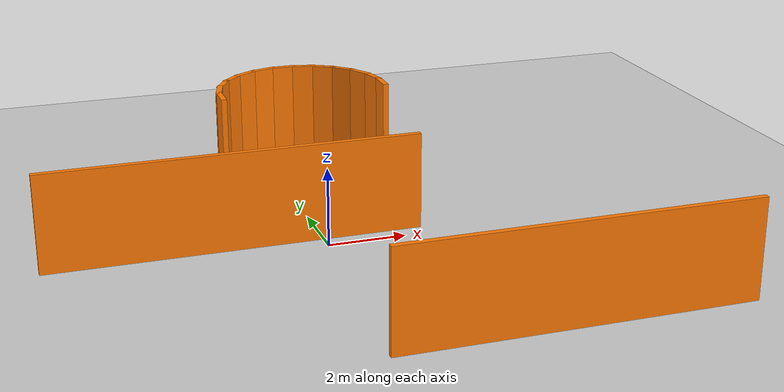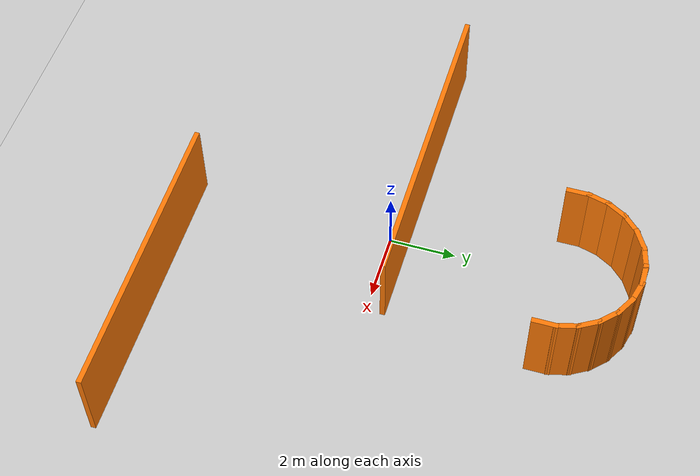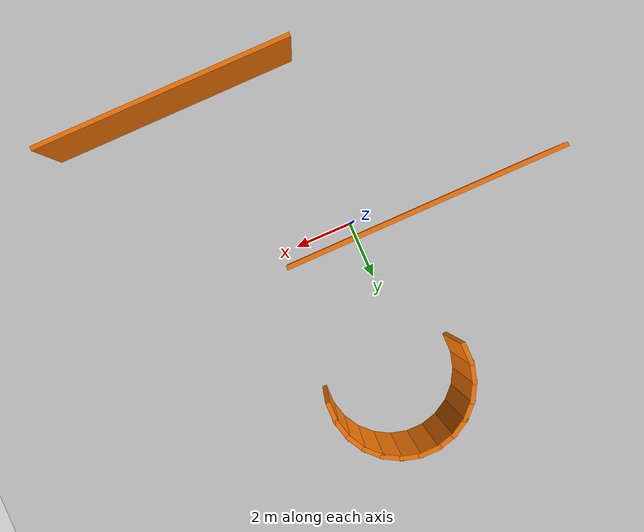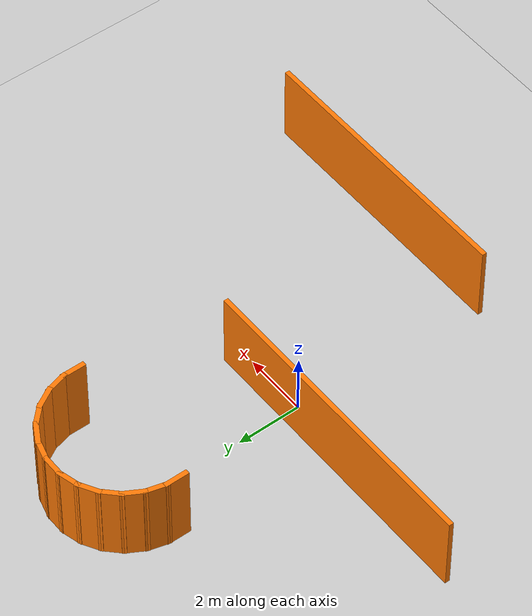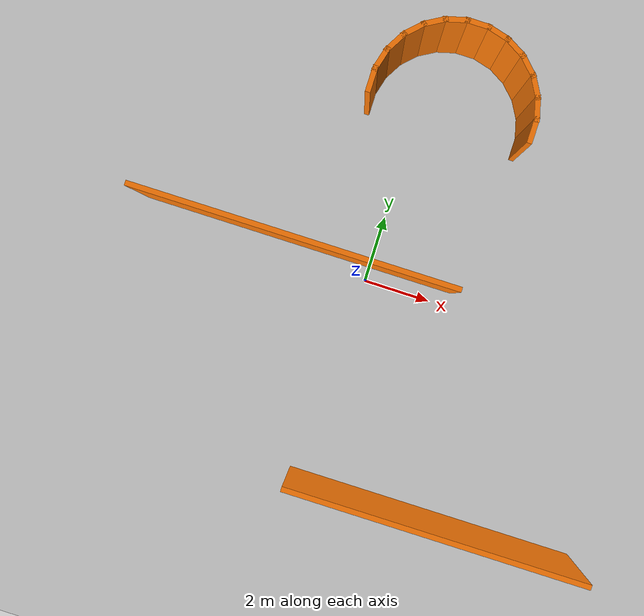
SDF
<?xml version="1.0" ?>
<sdf version="1.7">
  <world name="bug1_world">

    <!-- Luz do sol -->
    <include>
      <uri>model://sun</uri>
    </include>

    <!-- Incluindo o seu modelo -->
    <include>
      <uri>model://bug1_world</uri>
    </include>

    <include>
      <uri>model://ground_plane</uri>
    </include>

    <!-- Luz em forma de círculo (~0.3 m de raio no chão) -->
    <light name="circle_light" type="spot">
      <!-- pose: x y z roll pitch yaw -->
      <pose>0.0 8.7 2.0 0 0 0</pose>
      <diffuse>1 1 1 1</diffuse>
      <specular>0.2 0.2 0.2 1</specular>
      <cast_shadows>false</cast_shadows>
      <attenuation>
        <range>3</range>
        <constant>0.5</constant>
        <linear>0.1</linear>
        <quadratic>0.01</quadratic>
      </attenuation>
      <!-- Apontando para baixo -->
      <direction>0 0 -1</direction>
      <spot>
        <!-- Para raio ~0.3m a 1m de altura: outer ≈ 2*atan(0.3/1) ≈ 0.582 -->
        <inner_angle>0.4</inner_angle>
        <outer_angle>0.582</outer_angle>
        <falloff>0.8</falloff>
      </spot>
    </light>

    <light name="circle_light_2" type="spot">
      <!-- pose: x y z roll pitch yaw -->
      <pose>1.54 -7.0 2.0 0 0 0</pose>
      <diffuse>1 1 1 1</diffuse>
      <specular>0.2 0.2 0.2 1</specular>
      <cast_shadows>false</cast_shadows>
      <attenuation>
        <range>3</range>
        <constant>0.5</constant>
        <linear>0.1</linear>
        <quadratic>0.01</quadratic>
      </attenuation>
      <!-- Apontando para baixo -->
      <direction>0 0 -1</direction>
      <spot>
        <!-- Para raio ~0.3m a 1m de altura: outer ≈ 2*atan(0.3/1) ≈ 0.582 -->
        <inner_angle>0.4</inner_angle>
        <outer_angle>0.582</outer_angle>
        <falloff>0.8</falloff>
      </spot>
    </light>

  </world>
</sdf>

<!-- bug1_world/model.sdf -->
<sdf version='1.7'>
  <model name='bug1_world'>
    <pose>-0.089 0.07 0 0 -0 0</pose>
    <link name='Wall_26'>
      <collision name='Wall_26_Collision'>
        <geometry>
          <box>
            <size>8.75 0.15 2.5</size>
          </box>
        </geometry>
        <pose>0 0 1.25 0 -0 0</pose>
      </collision>
      <visual name='Wall_26_Visual'>
        <pose>0 0 1.25 0 -0 0</pose>
        <geometry>
          <box>
            <size>8.75 0.15 2.5</size>
          </box>
        </geometry>
        <material>
          <script>
            <uri>file://media/materials/scripts/gazebo.material</uri>
            <name>Gazebo/Grey</name>
          </script>
          <ambient>0.996078 0.47451 0.0196078 1</ambient>
        </material>
        <meta>
          <layer>0</layer>
        </meta>
      </visual>
      <pose>4.013 -6.143 0 0 -0 0</pose>
    </link>
    <link name='Wall_32'>
      <collision name='Wall_32_Collision'>
        <geometry>
          <box>
            <size>9.5 0.15 2.5</size>
          </box>
        </geometry>
        <pose>0 0 1.25 0 -0 0</pose>
      </collision>
      <visual name='Wall_32_Visual'>
        <pose>0 0 1.25 0 -0 0</pose>
        <geometry>
          <box>
            <size>9.5 0.15 2.5</size>
          </box>
        </geometry>
        <material>
          <script>
            <uri>file://media/materials/scripts/gazebo.material</uri>
            <name>Gazebo/Grey</name>
          </script>
          <ambient>0.996078 0.47451 0.0196078 1</ambient>
        </material>
        <meta>
          <layer>0</layer>
        </meta>
      </visual>
      <pose>-2.103 0.427 0 0 -0 3.14159</pose>
    </link>
    <link name='Wall_83'>
      <collision name='Wall_83_Collision'>
        <geometry>
          <box>
            <size>0.75 0.15 2.5</size>
          </box>
        </geometry>
        <pose>0 0 1.25 0 -0 0</pose>
      </collision>
      <visual name='Wall_83_Visual'>
        <pose>0 0 1.25 0 -0 0</pose>
        <geometry>
          <box>
            <size>0.75 0.15 2.5</size>
          </box>
        </geometry>
        <material>
          <script>
            <uri>file://media/materials/scripts/gazebo.material</uri>
            <name>Gazebo/Grey</name>
          </script>
          <ambient>0.996078 0.47451 0.0196078 1</ambient>
        </material>
        <meta>
          <layer>0</layer>
        </meta>
      </visual>
      <pose>-1.385 5.099 0 0 -0 1.5708</pose>
    </link>
    <link name='Wall_84'>
      <collision name='Wall_84_Collision'>
        <geometry>
          <box>
            <size>0.75 0.15 2.5</size>
          </box>
        </geometry>
        <pose>0 0 1.25 0 -0 0</pose>
      </collision>
      <visual name='Wall_84_Visual'>
        <pose>0 0 1.25 0 -0 0</pose>
        <geometry>
          <box>
            <size>0.75 0.15 2.5</size>
          </box>
        </geometry>
        <material>
          <script>
            <uri>file://media/materials/scripts/gazebo.material</uri>
            <name>Gazebo/Grey</name>
          </script>
          <ambient>0.996078 0.47451 0.0196078 1</ambient>
        </material>
        <meta>
          <layer>0</layer>
        </meta>
      </visual>
      <pose>-1.307 5.6885 0 0 -0 1.30762</pose>
    </link>
    <link name='Wall_87'>
      <collision name='Wall_87_Collision'>
        <geometry>
          <box>
            <size>0.75 0.15 2.5</size>
          </box>
        </geometry>
        <pose>0 0 1.25 0 -0 0</pose>
      </collision>
      <visual name='Wall_87_Visual'>
        <pose>0 0 1.25 0 -0 0</pose>
        <geometry>
          <box>
            <size>0.75 0.15 2.5</size>
          </box>
        </geometry>
        <material>
          <script>
            <uri>file://media/materials/scripts/gazebo.material</uri>
            <name>Gazebo/Grey</name>
          </script>
          <ambient>0.996078 0.47451 0.0196078 1</ambient>
        </material>
        <meta>
          <layer>0</layer>
        </meta>
      </visual>
      <pose>-1.079 6.238 0 0 -0 1.04752</pose>
    </link>
    <link name='Wall_88'>
      <collision name='Wall_88_Collision'>
        <geometry>
          <box>
            <size>0.75 0.15 2.5</size>
          </box>
        </geometry>
        <pose>0 0 1.25 0 -0 0</pose>
      </collision>
      <visual name='Wall_88_Visual'>
        <pose>0 0 1.25 0 -0 0</pose>
        <geometry>
          <box>
            <size>0.75 0.15 2.5</size>
          </box>
        </geometry>
        <material>
          <script>
            <uri>file://media/materials/scripts/gazebo.material</uri>
            <name>Gazebo/Grey</name>
          </script>
          <ambient>0.996078 0.47451 0.0196078 1</ambient>
        </material>
        <meta>
          <layer>0</layer>
        </meta>
      </visual>
      <pose>-0.717 6.71 0 0 -0 0.785398</pose>
    </link>
    <link name='Wall_90'>
      <collision name='Wall_90_Collision'>
        <geometry>
          <box>
            <size>0.75 0.15 2.5</size>
          </box>
        </geometry>
        <pose>0 0 1.25 0 -0 0</pose>
      </collision>
      <visual name='Wall_90_Visual'>
        <pose>0 0 1.25 0 -0 0</pose>
        <geometry>
          <box>
            <size>0.75 0.15 2.5</size>
          </box>
        </geometry>
        <material>
          <script>
            <uri>file://media/materials/scripts/gazebo.material</uri>
            <name>Gazebo/Grey</name>
          </script>
          <ambient>0.996078 0.47451 0.0196078 1</ambient>
        </material>
        <meta>
          <layer>0</layer>
        </meta>
      </visual>
      <pose>-0.245 7.072 0 0 -0 0.523278</pose>
    </link>
    <link name='Wall_91'>
      <collision name='Wall_91_Collision'>
        <geometry>
          <box>
            <size>0.75 0.15 2.5</size>
          </box>
        </geometry>
        <pose>0 0 1.25 0 -0 0</pose>
      </collision>
      <visual name='Wall_91_Visual'>
        <pose>0 0 1.25 0 -0 0</pose>
        <geometry>
          <box>
            <size>0.75 0.15 2.5</size>
          </box>
        </geometry>
        <material>
          <script>
            <uri>file://media/materials/scripts/gazebo.material</uri>
            <name>Gazebo/Grey</name>
          </script>
          <ambient>0.996078 0.47451 0.0196078 1</ambient>
        </material>
        <meta>
          <layer>0</layer>
        </meta>
      </visual>
      <pose>0.3045 7.3 0 0 -0 0.263181</pose>
    </link>
    <link name='Wall_92'>
      <collision name='Wall_92_Collision'>
        <geometry>
          <box>
            <size>0.75 0.15 2.5</size>
          </box>
        </geometry>
        <pose>0 0 1.25 0 -0 0</pose>
      </collision>
      <visual name='Wall_92_Visual'>
        <pose>0 0 1.25 0 -0 0</pose>
        <geometry>
          <box>
            <size>0.75 0.15 2.5</size>
          </box>
        </geometry>
        <material>
          <script>
            <uri>file://media/materials/scripts/gazebo.material</uri>
            <name>Gazebo/Grey</name>
          </script>
          <ambient>0.996078 0.47451 0.0196078 1</ambient>
        </material>
        <meta>
          <layer>0</layer>
        </meta>
      </visual>
      <pose>0.894 7.378 0 0 -0 0</pose>
    </link>
    <link name='Wall_93'>
      <collision name='Wall_93_Collision'>
        <geometry>
          <box>
            <size>0.75 0.15 2.5</size>
          </box>
        </geometry>
        <pose>0 0 1.25 0 -0 0</pose>
      </collision>
      <visual name='Wall_93_Visual'>
        <pose>0 0 1.25 0 -0 0</pose>
        <geometry>
          <box>
            <size>0.75 0.15 2.5</size>
          </box>
        </geometry>
        <material>
          <script>
            <uri>file://media/materials/scripts/gazebo.material</uri>
            <name>Gazebo/Grey</name>
          </script>
          <ambient>0.996078 0.47451 0.0196078 1</ambient>
        </material>
        <meta>
          <layer>0</layer>
        </meta>
      </visual>
      <pose>1.484 7.3 0 0 -0 -0.262747</pose>
    </link>
    <link name='Wall_94'>
      <collision name='Wall_94_Collision'>
        <geometry>
          <box>
            <size>0.75 0.15 2.5</size>
          </box>
        </geometry>
        <pose>0 0 1.25 0 -0 0</pose>
      </collision>
      <visual name='Wall_94_Visual'>
        <pose>0 0 1.25 0 -0 0</pose>
        <geometry>
          <box>
            <size>0.75 0.15 2.5</size>
          </box>
        </geometry>
        <material>
          <script>
            <uri>file://media/materials/scripts/gazebo.material</uri>
            <name>Gazebo/Grey</name>
          </script>
          <ambient>0.996078 0.47451 0.0196078 1</ambient>
        </material>
        <meta>
          <layer>0</layer>
        </meta>
      </visual>
      <pose>2.0335 7.072 0 0 -0 -0.524112</pose>
    </link>
    <link name='Wall_95'>
      <collision name='Wall_95_Collision'>
        <geometry>
          <box>
            <size>0.75 0.15 2.5</size>
          </box>
        </geometry>
        <pose>0 0 1.25 0 -0 0</pose>
      </collision>
      <visual name='Wall_95_Visual'>
        <pose>0 0 1.25 0 -0 0</pose>
        <geometry>
          <box>
            <size>0.75 0.15 2.5</size>
          </box>
        </geometry>
        <material>
          <script>
            <uri>file://media/materials/scripts/gazebo.material</uri>
            <name>Gazebo/Grey</name>
          </script>
          <ambient>0.996078 0.47451 0.0196078 1</ambient>
        </material>
        <meta>
          <layer>0</layer>
        </meta>
      </visual>
      <pose>2.5055 6.71 0 0 -0 -0.78422</pose>
    </link>
    <link name='Wall_96'>
      <collision name='Wall_96_Collision'>
        <geometry>
          <box>
            <size>0.75 0.15 2.5</size>
          </box>
        </geometry>
        <pose>0 0 1.25 0 -0 0</pose>
      </collision>
      <visual name='Wall_96_Visual'>
        <pose>0 0 1.25 0 -0 0</pose>
        <geometry>
          <box>
            <size>0.75 0.15 2.5</size>
          </box>
        </geometry>
        <material>
          <script>
            <uri>file://media/materials/scripts/gazebo.material</uri>
            <name>Gazebo/Grey</name>
          </script>
          <ambient>0.996078 0.47451 0.0196078 1</ambient>
        </material>
        <meta>
          <layer>0</layer>
        </meta>
      </visual>
      <pose>2.868 6.238 0 0 -0 -1.04752</pose>
    </link>
    <link name='Wall_97'>
      <collision name='Wall_97_Collision'>
        <geometry>
          <box>
            <size>0.75 0.15 2.5</size>
          </box>
        </geometry>
        <pose>0 0 1.25 0 -0 0</pose>
      </collision>
      <visual name='Wall_97_Visual'>
        <pose>0 0 1.25 0 -0 0</pose>
        <geometry>
          <box>
            <size>0.75 0.15 2.5</size>
          </box>
        </geometry>
        <material>
          <script>
            <uri>file://media/materials/scripts/gazebo.material</uri>
            <name>Gazebo/Grey</name>
          </script>
          <ambient>0.996078 0.47451 0.0196078 1</ambient>
        </material>
        <meta>
          <layer>0</layer>
        </meta>
      </visual>
      <pose>3.0955 5.6885 0 0 -0 -1.30923</pose>
    </link>
    <link name='Wall_98'>
      <collision name='Wall_98_Collision'>
        <geometry>
          <box>
            <size>0.75 0.15 2.5</size>
          </box>
        </geometry>
        <pose>0 0 1.25 0 -0 0</pose>
      </collision>
      <visual name='Wall_98_Visual'>
        <pose>0 0 1.25 0 -0 0</pose>
        <geometry>
          <box>
            <size>0.75 0.15 2.5</size>
          </box>
        </geometry>
        <material>
          <script>
            <uri>file://media/materials/scripts/gazebo.material</uri>
            <name>Gazebo/Grey</name>
          </script>
          <ambient>0.996078 0.47451 0.0196078 1</ambient>
        </material>
        <meta>
          <layer>0</layer>
        </meta>
      </visual>
      <pose>3.173 5.099 0 0 -0 -1.5708</pose>
    </link>
    <static>1</static>
  </model>
</sdf>
